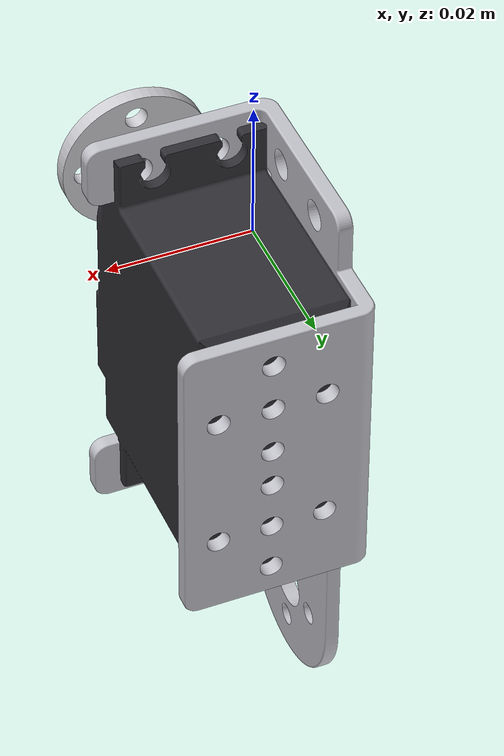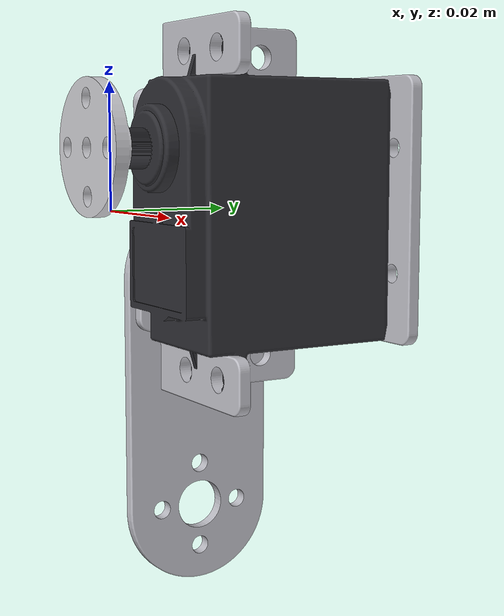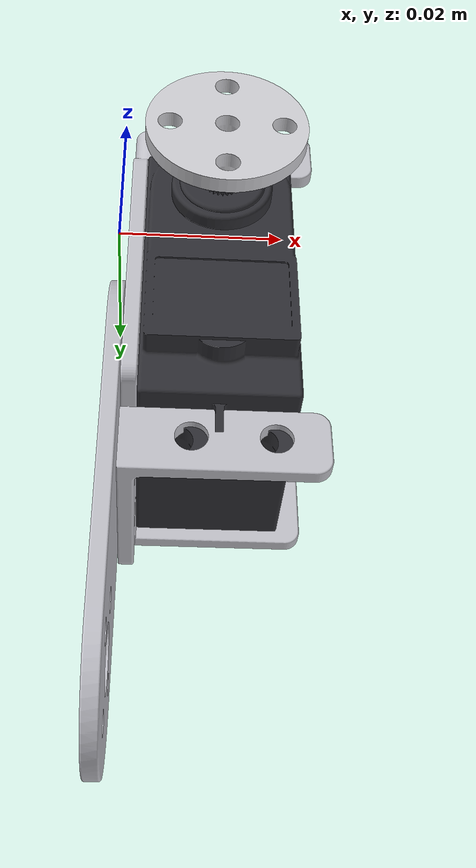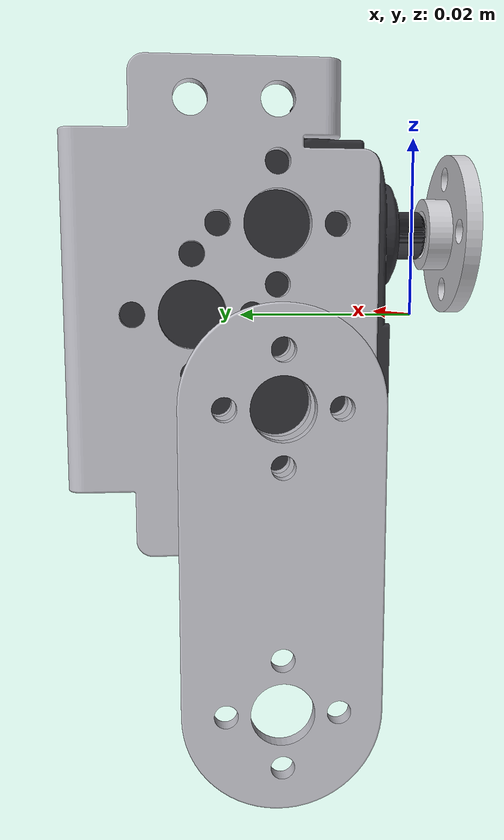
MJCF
<?xml version='1.0' encoding='utf-8'?>
  <mujoco model="left_forearm">
  <compiler angle="radian" meshdir=".." autolimits="true"/>
  <visual>
    <global offwidth="1024" offheight="1024"/>
    <headlight ambient="0.55 0.55 0.55" diffuse="0.6 0.6 0.6" specular="0.2 0.2 0.2"/>
  </visual>
  <default>
    <default class="visual"><geom type="mesh" contype="0" conaffinity="0" group="2" density="0"/></default>
    <default class="collision"><geom type="mesh" group="3"/></default>
  </default>
  <asset>
    <mesh name="multi" file="多功能/多功能支架.STL" scale="0.001 0.001 0.001"/>
    <mesh name="straight" file="一字/一字支架.STL" scale="0.001 0.001 0.001"/>
    <mesh name="servo" file="舵机/舵机.STL" scale="0.001 0.001 0.001"/>
    <mesh name="horn" file="金属舵盘/金属舵盘.STL" scale="0.001 0.001 0.001"/>
    <material name="bracket" rgba="0.75 0.75 0.78 1"/>
    <material name="dark" rgba="0.18 0.18 0.20 1"/>
    <material name="horn" rgba="0.80 0.80 0.82 1"/>
  </asset>
  <worldbody>
    <body name="multi_0" pos="0.013500 0.022000 0.000000" quat="0.000000 0.707107 0.000000 0.707107">
      <geom name="multi_0_v" mesh="multi" class="visual" material="bracket" pos="-0.029 -0.0185 -0.0125"/>
      <geom name="multi_0_c" mesh="multi" class="collision" pos="-0.029 -0.0185 -0.0125" density="2700"/>
    </body>
    <body name="servo_1" pos="0.012750 0.017000 0.000000" quat="0.000000 0.000000 -0.707107 0.707107">
      <geom name="servo_1_v" mesh="servo" class="visual" material="dark" pos="-0.009752 -0.027 -0.0215"/>
      <geom name="servo_1_c" mesh="servo" class="collision" material="dark" pos="-0.009752 -0.027 -0.0215" density="1600"/>
    </body>
    <body name="horn_2" pos="0.012750 -0.007000 0.010000" quat="0.000000 0.000000 1.000000 0.000000">
      <geom name="horn_2_v" mesh="horn" class="visual" material="horn" pos="-0.01 -0.0026 -0.01"/>
      <geom name="horn_2_c" mesh="horn" class="collision" material="horn" pos="-0.01 -0.0026 -0.01" density="2700"/>
    </body>
    <!-- 一字 paddle bolted to horn_2: rounded horn end over the disc, long end down (-Z). -->
    <body name="straight_3" pos="0.000003 0.014996 -0.029991" quat="0.707107 0.000000 0.707107 0.000000">
      <geom name="straight_3_v" mesh="straight" class="visual" material="bracket" pos="-0.0315 -0.0125 -0.001001"/>
      <geom name="straight_3_c" mesh="straight" class="collision" pos="-0.0315 -0.0125 -0.001001" density="2700"/>
    </body>
    <!-- Horn retaining screws (visual only), through the 4 disc holes. -->
  </worldbody>
</mujoco>
